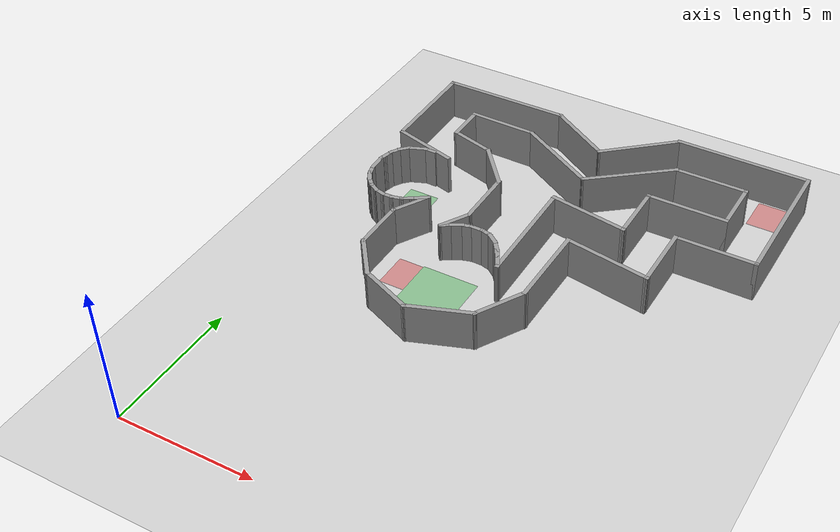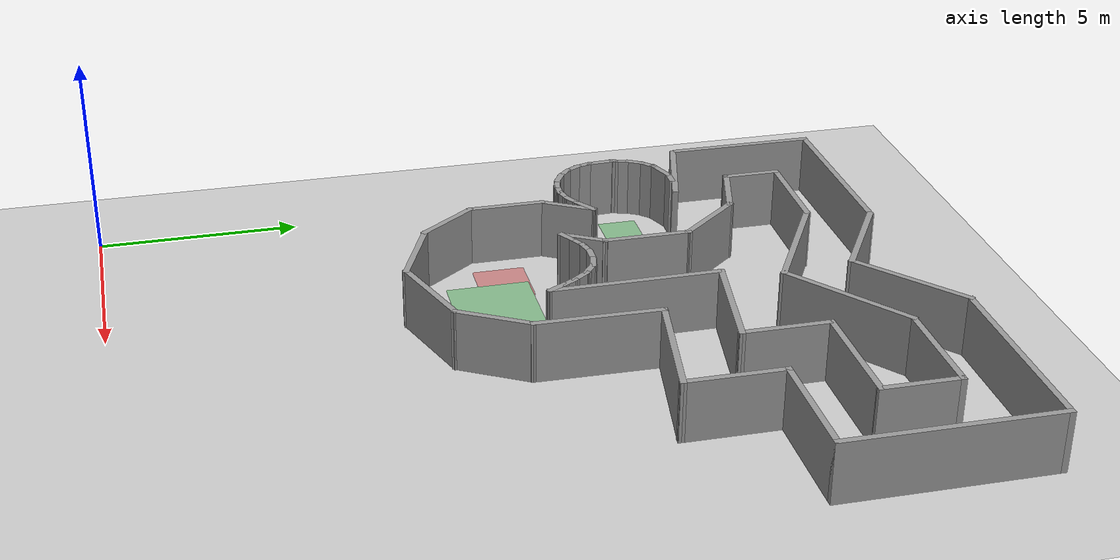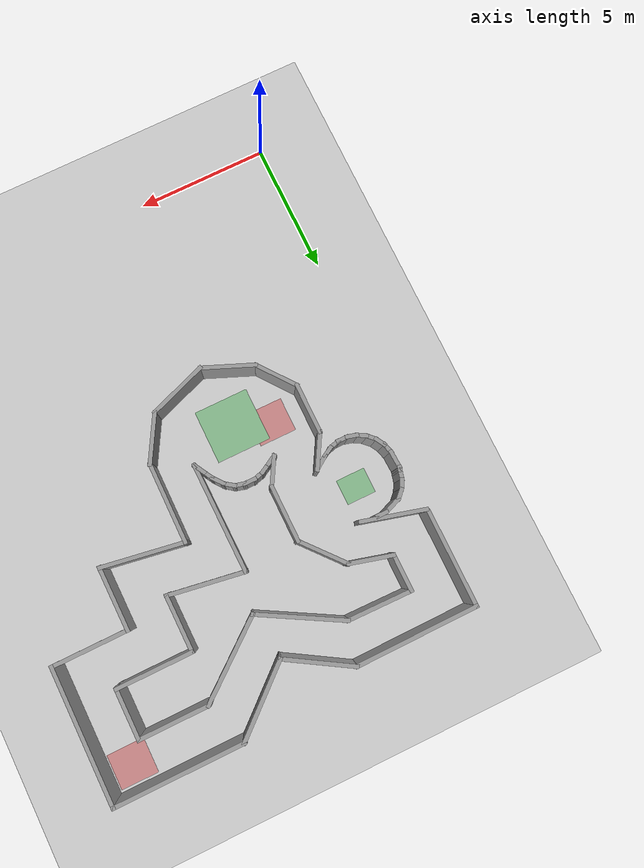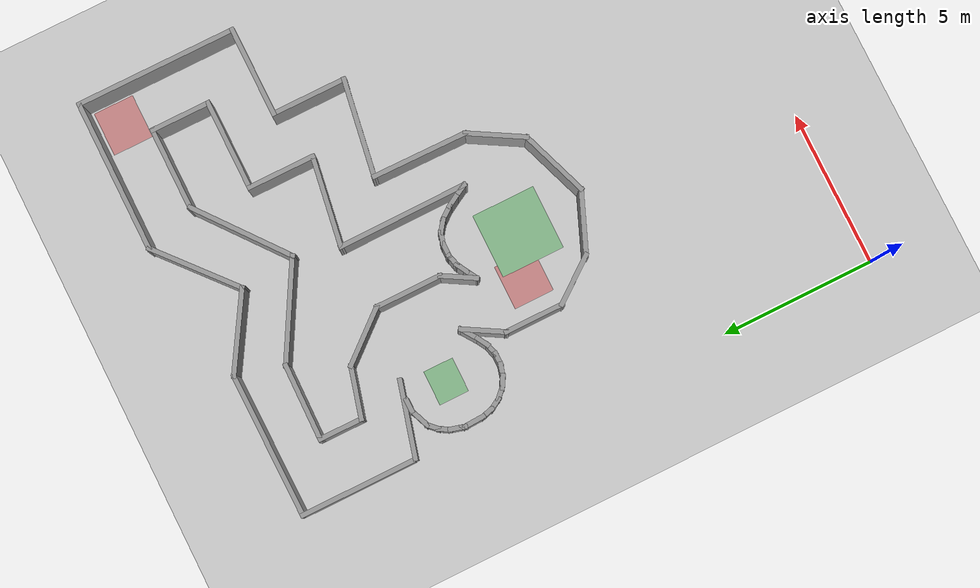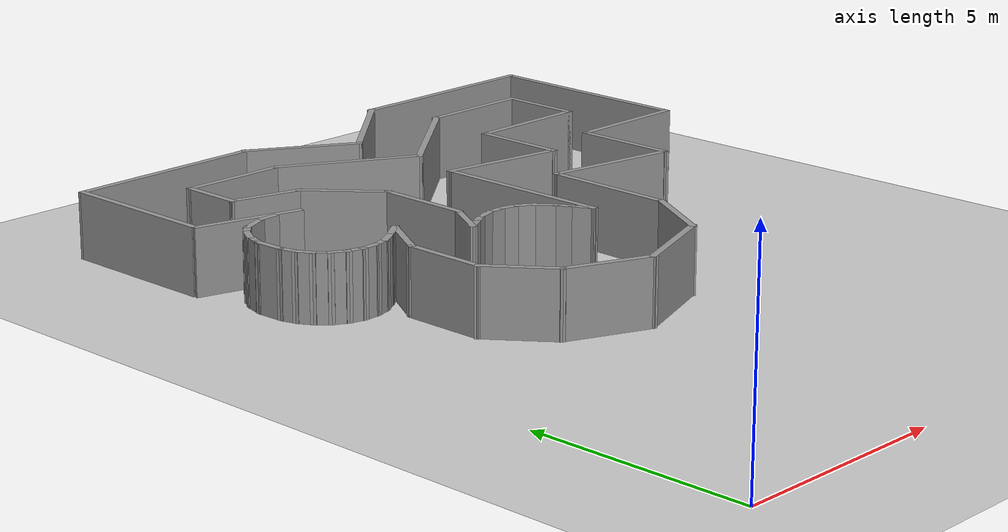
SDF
<sdf version="1.7">
 <world name="default">
  <model name="ground_plane">
   <static>1</static>
   <link name="link">
    <collision name="collision">
     <geometry><plane><normal>0 0 1</normal><size>100 100</size></plane></geometry>
     <surface>
      <contact><collide_bitmask>65535</collide_bitmask></contact>
      <friction><ode><mu>100</mu><mu2>50</mu2></ode></friction>
     </surface>
    </collision>
    <visual name="visual">
     <cast_shadows>0</cast_shadows>
     <geometry><plane><normal>0 0 1</normal><size>100 100</size></plane></geometry>
     <material>
      <script><uri>file://media/materials/scripts/gazebo.material</uri><name>Gazebo/Grey</name></script>
     </material>
    </visual>
   </link>
  </model>
  <model name="map_2">
   <stepLimit>500</stepLimit>
   <pose>7.75806 13.2212 0 0 -0 0</pose>
   <link name="Wall_10">
    <collision name="Wall_10_Collision">
     <geometry><box><size>2.75 0.15 1.5</size></box></geometry>
     <pose>0 0 0.75 0 -0 0</pose>
    </collision>
    <visual name="Wall_10_Visual">
     <pose>0 0 0.75 0 -0 0</pose>
     <geometry><box><size>2.75 0.15 1.5</size></box></geometry>
     <material>
      <script><uri>file://media/materials/scripts/gazebo.material</uri><name>Gazebo/Grey</name></script>
      <ambient>1 1 1 1</ambient>
     </material>
     <meta><layer>0</layer></meta>
    </visual>
    <pose>4.01324 4.53292 0 0 -0 3.14159</pose>
   </link>
   <link name="Wall_100">
    <collision name="Wall_100_Collision">
     <geometry><box><size>0.5 0.15 1.5</size></box></geometry>
     <pose>0 0 0.75 0 -0 0</pose>
    </collision>
    <visual name="Wall_100_Visual">
     <pose>0 0 0.75 0 -0 0</pose>
     <geometry><box><size>0.5 0.15 1.5</size></box></geometry>
     <material>
      <script><uri>file://media/materials/scripts/gazebo.material</uri><name>Gazebo/Grey</name></script>
      <ambient>1 1 1 1</ambient>
     </material>
     <meta><layer>0</layer></meta>
    </visual>
    <pose>-2.19576 -1.78658 0 0 -0 0.262995</pose>
   </link>
   <link name="Wall_101">
    <collision name="Wall_101_Collision">
     <geometry><box><size>0.546939 0.15 1.5</size></box></geometry>
     <pose>0 0 0.75 0 -0 0</pose>
    </collision>
    <visual name="Wall_101_Visual">
     <pose>0 0 0.75 0 -0 0</pose>
     <geometry><box><size>0.546939 0.15 1.5</size></box></geometry>
     <material>
      <script><uri>file://media/materials/scripts/gazebo.material</uri><name>Gazebo/Grey</name></script>
      <ambient>1 1 1 1</ambient>
     </material>
     <meta><layer>0</layer></meta>
    </visual>
    <pose>-1.82826 -1.74408 0 0 -0 -0.015112</pose>
   </link>
   <link name="Wall_102">
    <collision name="Wall_102_Collision">
     <geometry><box><size>0.5 0.15 1.5</size></box></geometry>
     <pose>0 0 0.75 0 -0 0</pose>
    </collision>
    <visual name="Wall_102_Visual">
     <pose>0 0 0.75 0 -0 0</pose>
     <geometry><box><size>0.5 0.15 1.5</size></box></geometry>
     <material>
      <script><uri>file://media/materials/scripts/gazebo.material</uri><name>Gazebo/Grey</name></script>
      <ambient>1 1 1 1</ambient>
     </material>
     <meta><layer>0</layer></meta>
    </visual>
    <pose>-1.46076 -1.79258 0 0 -0 -0.262995</pose>
   </link>
   <link name="Wall_103">
    <collision name="Wall_103_Collision">
     <geometry><box><size>0.544934 0.15 1.5</size></box></geometry>
     <pose>0 0 0.75 0 -0 0</pose>
    </collision>
    <visual name="Wall_103_Visual">
     <pose>0 0 0.75 0 -0 0</pose>
     <geometry><box><size>0.544934 0.15 1.5</size></box></geometry>
     <material>
      <script><uri>file://media/materials/scripts/gazebo.material</uri><name>Gazebo/Grey</name></script>
      <ambient>1 1 1 1</ambient>
     </material>
     <meta><layer>0</layer></meta>
    </visual>
    <pose>-1.13276 -1.95558 0 0 -0 -0.63642</pose>
   </link>
   <link name="Wall_104">
    <collision name="Wall_104_Collision">
     <geometry><box><size>0.590386 0.15 1.5</size></box></geometry>
     <pose>0 0 0.75 0 -0 0</pose>
    </collision>
    <visual name="Wall_104_Visual">
     <pose>0 0 0.75 0 -0 0</pose>
     <geometry><box><size>0.590386 0.15 1.5</size></box></geometry>
     <material>
      <script><uri>file://media/materials/scripts/gazebo.material</uri><name>Gazebo/Grey</name></script>
      <ambient>1 1 1 1</ambient>
     </material>
     <meta><layer>0</layer></meta>
    </visual>
    <pose>-0.837762 -2.24608 0 0 -0 -0.904572</pose>
   </link>
   <link name="Wall_105">
    <collision name="Wall_105_Collision">
     <geometry><box><size>0.5 0.15 1.5</size></box></geometry>
     <pose>0 0 0.75 0 -0 0</pose>
    </collision>
    <visual name="Wall_105_Visual">
     <pose>0 0 0.75 0 -0 0</pose>
     <geometry><box><size>0.5 0.15 1.5</size></box></geometry>
     <material>
      <script><uri>file://media/materials/scripts/gazebo.material</uri><name>Gazebo/Grey</name></script>
      <ambient>1 1 1 1</ambient>
     </material>
     <meta><layer>0</layer></meta>
    </visual>
    <pose>-0.614262 -2.57058 0 0 -0 -1.04704</pose>
   </link>
   <link name="Wall_106">
    <collision name="Wall_106_Collision">
     <geometry><box><size>0.581498 0.15 1.5</size></box></geometry>
     <pose>0 0 0.75 0 -0 0</pose>
    </collision>
    <visual name="Wall_106_Visual">
     <pose>0 0 0.75 0 -0 0</pose>
     <geometry><box><size>0.581498 0.15 1.5</size></box></geometry>
     <material>
      <script><uri>file://media/materials/scripts/gazebo.material</uri><name>Gazebo/Grey</name></script>
      <ambient>1 1 1 1</ambient>
     </material>
     <meta><layer>0</layer></meta>
    </visual>
    <pose>-0.422762 -2.91108 0 0 -0 -1.06775</pose>
   </link>
   <link name="Wall_12">
    <collision name="Wall_12_Collision">
     <geometry><box><size>3.54164 0.15 1.5</size></box></geometry>
     <pose>0 0 0.75 0 -0 0</pose>
    </collision>
    <visual name="Wall_12_Visual">
     <pose>0 0 0.75 0 -0 0</pose>
     <geometry><box><size>3.54164 0.15 1.5</size></box></geometry>
     <material>
      <script><uri>file://media/materials/scripts/gazebo.material</uri><name>Gazebo/Grey</name></script>
      <ambient>1 1 1 1</ambient>
     </material>
     <meta><layer>0</layer></meta>
    </visual>
    <pose>1.38174 3.48292 0 0 -0 0.667741</pose>
   </link>
   <link name="Wall_14">
    <collision name="Wall_14_Collision">
     <geometry><box><size>3.42797 0.15 1.5</size></box></geometry>
     <pose>0 0 0.75 0 -0 0</pose>
    </collision>
    <visual name="Wall_14_Visual">
     <pose>0 0 0.75 0 -0 0</pose>
     <geometry><box><size>3.42797 0.15 1.5</size></box></geometry>
     <material>
      <script><uri>file://media/materials/scripts/gazebo.material</uri><name>Gazebo/Grey</name></script>
      <ambient>1 1 1 1</ambient>
     </material>
     <meta><layer>0</layer></meta>
    </visual>
    <pose>-1.37776 3.23742 0 0 -0 -0.513054</pose>
   </link>
   <link name="Wall_16">
    <collision name="Wall_16_Collision">
     <geometry><box><size>2.56379 0.15 1.5</size></box></geometry>
     <pose>0 0 0.75 0 -0 0</pose>
    </collision>
    <visual name="Wall_16_Visual">
     <pose>0 0 0.75 0 -0 0</pose>
     <geometry><box><size>2.56379 0.15 1.5</size></box></geometry>
     <material>
      <script><uri>file://media/materials/scripts/gazebo.material</uri><name>Gazebo/Grey</name></script>
      <ambient>1 1 1 1</ambient>
     </material>
     <meta><layer>0</layer></meta>
    </visual>
    <pose>-4.01276 4.06192 0 0 -0 -0.016568</pose>
   </link>
   <link name="Wall_18">
    <collision name="Wall_18_Collision">
     <geometry><box><size>1.5 0.15 1.5</size></box></geometry>
     <pose>0 0 0.75 0 -0 0</pose>
    </collision>
    <visual name="Wall_18_Visual">
     <pose>0 0 0.75 0 -0 0</pose>
     <geometry><box><size>1.5 0.15 1.5</size></box></geometry>
     <material>
      <script><uri>file://media/materials/scripts/gazebo.material</uri><name>Gazebo/Grey</name></script>
      <ambient>1 1 1 1</ambient>
     </material>
     <meta><layer>0</layer></meta>
    </visual>
    <pose>-5.21976 3.40692 0 0 -0 -1.5708</pose>
   </link>
   <link name="Wall_19">
    <collision name="Wall_19_Collision">
     <geometry><box><size>1.75 0.15 1.5</size></box></geometry>
     <pose>0 0 0.75 0 -0 0</pose>
    </collision>
    <visual name="Wall_19_Visual">
     <pose>0 0 0.75 0 -0 0</pose>
     <geometry><box><size>1.75 0.15 1.5</size></box></geometry>
     <material>
      <script><uri>file://media/materials/scripts/gazebo.material</uri><name>Gazebo/Grey</name></script>
      <ambient>1 1 1 1</ambient>
     </material>
     <meta><layer>0</layer></meta>
    </visual>
    <pose>-4.44676 2.52492 0 0 -0 -0.261649</pose>
   </link>
   <link name="Wall_2">
    <collision name="Wall_2_Collision">
     <geometry><box><size>4.27213 0.15 1.5</size></box></geometry>
     <pose>0 0 0.75 0 -0 0</pose>
    </collision>
    <visual name="Wall_2_Visual">
     <pose>0 0 0.75 0 -0 0</pose>
     <geometry><box><size>4.27213 0.15 1.5</size></box></geometry>
     <material>
      <script><uri>file://media/materials/scripts/gazebo.material</uri><name>Gazebo/Grey</name></script>
      <ambient>1 1 1 1</ambient>
     </material>
     <meta><layer>0</layer></meta>
    </visual>
    <pose>-0.335262 -1.03908 0 0 -0 1.5788</pose>
   </link>
   <link name="Wall_21">
    <collision name="Wall_21_Collision">
     <geometry><box><size>2.05434 0.15 1.5</size></box></geometry>
     <pose>0 0 0.75 0 -0 0</pose>
    </collision>
    <visual name="Wall_21_Visual">
     <pose>0 0 0.75 0 -0 0</pose>
     <geometry><box><size>2.05434 0.15 1.5</size></box></geometry>
     <material>
      <script><uri>file://media/materials/scripts/gazebo.material</uri><name>Gazebo/Grey</name></script>
      <ambient>1 1 1 1</ambient>
     </material>
     <meta><layer>0</layer></meta>
    </visual>
    <pose>-3.05876 1.59092 0 0 -0 2.27293</pose>
   </link>
   <link name="Wall_42">
    <collision name="Wall_42_Collision">
     <geometry><box><size>2.25 0.15 1.5</size></box></geometry>
     <pose>0 0 0.75 0 -0 0</pose>
    </collision>
    <visual name="Wall_42_Visual">
     <pose>0 0 0.75 0 -0 0</pose>
     <geometry><box><size>2.25 0.15 1.5</size></box></geometry>
     <material>
      <script><uri>file://media/materials/scripts/gazebo.material</uri><name>Gazebo/Grey</name></script>
      <ambient>1 1 1 1</ambient>
     </material>
     <meta><layer>0</layer></meta>
    </visual>
    <pose>-2.44376 -0.186078 0 0 -0 -1.5708</pose>
   </link>
   <link name="Wall_43">
    <collision name="Wall_43_Collision">
     <geometry><box><size>1.25 0.15 1.5</size></box></geometry>
     <pose>0 0 0.75 0 -0 0</pose>
    </collision>
    <visual name="Wall_43_Visual">
     <pose>0 0 0.75 0 -0 0</pose>
     <geometry><box><size>1.25 0.15 1.5</size></box></geometry>
     <material>
      <script><uri>file://media/materials/scripts/gazebo.material</uri><name>Gazebo/Grey</name></script>
      <ambient>1 1 1 1</ambient>
     </material>
     <meta><layer>0</layer></meta>
    </visual>
    <pose>-2.71876 -1.71208 0 0 -0 -2.09468</pose>
   </link>
   <link name="Wall_45">
    <collision name="Wall_45_Collision">
     <geometry><box><size>1.5 0.15 1.5</size></box></geometry>
     <pose>0 0 0.75 0 -0 0</pose>
    </collision>
    <visual name="Wall_45_Visual">
     <pose>0 0 0.75 0 -0 0</pose>
     <geometry><box><size>1.5 0.15 1.5</size></box></geometry>
     <material>
      <script><uri>file://media/materials/scripts/gazebo.material</uri><name>Gazebo/Grey</name></script>
      <ambient>1 1 1 1</ambient>
     </material>
     <meta><layer>0</layer></meta>
    </visual>
    <pose>-4.48526 -1.67358 0 0 -0 -2.09444</pose>
   </link>
   <link name="Wall_46">
    <collision name="Wall_46_Collision">
     <geometry><box><size>2 0.15 1.5</size></box></geometry>
     <pose>0 0 0.75 0 -0 0</pose>
    </collision>
    <visual name="Wall_46_Visual">
     <pose>0 0 0.75 0 -0 0</pose>
     <geometry><box><size>2 0.15 1.5</size></box></geometry>
     <material>
      <script><uri>file://media/materials/scripts/gazebo.material</uri><name>Gazebo/Grey</name></script>
      <ambient>1 1 1 1</ambient>
     </material>
     <meta><layer>0</layer></meta>
    </visual>
    <pose>-4.82276 -3.18308 0 0 -0 -1.5708</pose>
   </link>
   <link name="Wall_48">
    <collision name="Wall_48_Collision">
     <geometry><box><size>1.79931 0.15 1.5</size></box></geometry>
     <pose>0 0 0.75 0 -0 0</pose>
    </collision>
    <visual name="Wall_48_Visual">
     <pose>0 0 0.75 0 -0 0</pose>
     <geometry><box><size>1.79931 0.15 1.5</size></box></geometry>
     <material>
      <script><uri>file://media/materials/scripts/gazebo.material</uri><name>Gazebo/Grey</name></script>
      <ambient>1 1 1 1</ambient>
     </material>
     <meta><layer>0</layer></meta>
    </visual>
    <pose>-4.32126 -4.76258 0 0 -0 2.22461</pose>
   </link>
   <link name="Wall_5">
    <collision name="Wall_5_Collision">
     <geometry><box><size>2.99933 0.15 1.5</size></box></geometry>
     <pose>0 0 0.75 0 -0 0</pose>
    </collision>
    <visual name="Wall_5_Visual">
     <pose>0 0 0.75 0 -0 0</pose>
     <geometry><box><size>2.99933 0.15 1.5</size></box></geometry>
     <material>
      <script><uri>file://media/materials/scripts/gazebo.material</uri><name>Gazebo/Grey</name></script>
      <ambient>1 1 1 1</ambient>
     </material>
     <meta><layer>0</layer></meta>
    </visual>
    <pose>1.05574 0.802422 0 0 -0 2.98689</pose>
   </link>
   <link name="Wall_51">
    <collision name="Wall_51_Collision">
     <geometry><box><size>2.13517 0.15 1.5</size></box></geometry>
     <pose>0 0 0.75 0 -0 0</pose>
    </collision>
    <visual name="Wall_51_Visual">
     <pose>0 0 0.75 0 -0 0</pose>
     <geometry><box><size>2.13517 0.15 1.5</size></box></geometry>
     <material>
      <script><uri>file://media/materials/scripts/gazebo.material</uri><name>Gazebo/Grey</name></script>
      <ambient>1 1 1 1</ambient>
     </material>
     <meta><layer>0</layer></meta>
    </visual>
    <pose>-2.90126 -5.79458 0 0 -0 2.75164</pose>
   </link>
   <link name="Wall_53">
    <collision name="Wall_53_Collision">
     <geometry><box><size>2 0.15 1.5</size></box></geometry>
     <pose>0 0 0.75 0 -0 0</pose>
    </collision>
    <visual name="Wall_53_Visual">
     <pose>0 0 0.75 0 -0 0</pose>
     <geometry><box><size>2 0.15 1.5</size></box></geometry>
     <material>
      <script><uri>file://media/materials/scripts/gazebo.material</uri><name>Gazebo/Grey</name></script>
      <ambient>1 1 1 1</ambient>
     </material>
     <meta><layer>0</layer></meta>
    </visual>
    <pose>0.603738 -4.61208 0 0 -0 -2.09443</pose>
   </link>
   <link name="Wall_54">
    <collision name="Wall_54_Collision">
     <geometry><box><size>2.40606 0.15 1.5</size></box></geometry>
     <pose>0 0 0.75 0 -0 0</pose>
    </collision>
    <visual name="Wall_54_Visual">
     <pose>0 0 0.75 0 -0 0</pose>
     <geometry><box><size>2.40606 0.15 1.5</size></box></geometry>
     <material>
      <script><uri>file://media/materials/scripts/gazebo.material</uri><name>Gazebo/Grey</name></script>
      <ambient>1 1 1 1</ambient>
     </material>
     <meta><layer>0</layer></meta>
    </visual>
    <pose>-0.920762 -5.79258 0 0 -0 -2.79839</pose>
   </link>
   <link name="Wall_56">
    <collision name="Wall_56_Collision">
     <geometry><box><size>3.16414 0.15 1.5</size></box></geometry>
     <pose>0 0 0.75 0 -0 0</pose>
    </collision>
    <visual name="Wall_56_Visual">
     <pose>0 0 0.75 0 -0 0</pose>
     <geometry><box><size>3.16414 0.15 1.5</size></box></geometry>
     <material>
      <script><uri>file://media/materials/scripts/gazebo.material</uri><name>Gazebo/Grey</name></script>
      <ambient>1 1 1 1</ambient>
     </material>
     <meta><layer>0</layer></meta>
    </visual>
    <pose>1.08274 -2.30408 0 0 -0 1.55985</pose>
   </link>
   <link name="Wall_61">
    <collision name="Wall_61_Collision">
     <geometry><box><size>3.23875 0.15 1.5</size></box></geometry>
     <pose>0 0 0.75 0 -0 0</pose>
    </collision>
    <visual name="Wall_61_Visual">
     <pose>0 0 0.75 0 -0 0</pose>
     <geometry><box><size>3.23875 0.15 1.5</size></box></geometry>
     <material>
      <script><uri>file://media/materials/scripts/gazebo.material</uri><name>Gazebo/Grey</name></script>
      <ambient>1 1 1 1</ambient>
     </material>
     <meta><layer>0</layer></meta>
    </visual>
    <pose>2.62424 -1.04158 0 0 -0 2.98262</pose>
   </link>
   <link name="Wall_63">
    <collision name="Wall_63_Collision">
     <geometry><box><size>2.5 0.15 1.5</size></box></geometry>
     <pose>0 0 0.75 0 -0 0</pose>
    </collision>
    <visual name="Wall_63_Visual">
     <pose>0 0 0.75 0 -0 0</pose>
     <geometry><box><size>2.5 0.15 1.5</size></box></geometry>
     <material>
      <script><uri>file://media/materials/scripts/gazebo.material</uri><name>Gazebo/Grey</name></script>
      <ambient>1 1 1 1</ambient>
     </material>
     <meta><layer>0</layer></meta>
    </visual>
    <pose>4.14924 -0.111078 0 0 -0 1.5708</pose>
   </link>
   <link name="Wall_64">
    <collision name="Wall_64_Collision">
     <geometry><box><size>3 0.15 1.5</size></box></geometry>
     <pose>0 0 0.75 0 -0 0</pose>
    </collision>
    <visual name="Wall_64_Visual">
     <pose>0 0 0.75 0 -0 0</pose>
     <geometry><box><size>3 0.15 1.5</size></box></geometry>
     <material>
      <script><uri>file://media/materials/scripts/gazebo.material</uri><name>Gazebo/Grey</name></script>
      <ambient>1 1 1 1</ambient>
     </material>
     <meta><layer>0</layer></meta>
    </visual>
    <pose>5.57424 1.06392 0 0 -0 0</pose>
   </link>
   <link name="Wall_65">
    <collision name="Wall_65_Collision">
     <geometry><box><size>5.25 0.15 1.5</size></box></geometry>
     <pose>0 0 0.75 0 -0 0</pose>
    </collision>
    <visual name="Wall_65_Visual">
     <pose>0 0 0.75 0 -0 0</pose>
     <geometry><box><size>5.25 0.15 1.5</size></box></geometry>
     <material>
      <script><uri>file://media/materials/scripts/gazebo.material</uri><name>Gazebo/Grey</name></script>
      <ambient>1 1 1 1</ambient>
     </material>
     <meta><layer>0</layer></meta>
    </visual>
    <pose>6.99924 3.61392 0 0 -0 1.5708</pose>
   </link>
   <link name="Wall_66">
    <collision name="Wall_66_Collision">
     <geometry><box><size>5 0.15 1.5</size></box></geometry>
     <pose>0 0 0.75 0 -0 0</pose>
    </collision>
    <visual name="Wall_66_Visual">
     <pose>0 0 0.75 0 -0 0</pose>
     <geometry><box><size>5 0.15 1.5</size></box></geometry>
     <material>
      <script><uri>file://media/materials/scripts/gazebo.material</uri><name>Gazebo/Grey</name></script>
      <ambient>1 1 1 1</ambient>
     </material>
     <meta><layer>0</layer></meta>
    </visual>
    <pose>4.57424 6.16392 0 0 -0 3.14159</pose>
   </link>
   <link name="Wall_68">
    <collision name="Wall_68_Collision">
     <geometry><box><size>3.17756 0.15 1.5</size></box></geometry>
     <pose>0 0 0.75 0 -0 0</pose>
    </collision>
    <visual name="Wall_68_Visual">
     <pose>0 0 0.75 0 -0 0</pose>
     <geometry><box><size>3.17756 0.15 1.5</size></box></geometry>
     <material>
      <script><uri>file://media/materials/scripts/gazebo.material</uri><name>Gazebo/Grey</name></script>
      <ambient>1 1 1 1</ambient>
     </material>
     <meta><layer>0</layer></meta>
    </visual>
    <pose>1.00124 5.17742 0 0 -0 0.70988</pose>
   </link>
   <link name="Wall_7">
    <collision name="Wall_7_Collision">
     <geometry><box><size>2.25 0.15 1.5</size></box></geometry>
     <pose>0 0 0.75 0 -0 0</pose>
    </collision>
    <visual name="Wall_7_Visual">
     <pose>0 0 0.75 0 -0 0</pose>
     <geometry><box><size>2.25 0.15 1.5</size></box></geometry>
     <material>
      <script><uri>file://media/materials/scripts/gazebo.material</uri><name>Gazebo/Grey</name></script>
      <ambient>1 1 1 1</ambient>
     </material>
     <meta><layer>0</layer></meta>
    </visual>
    <pose>2.46324 1.63292 0 0 -0 1.5708</pose>
   </link>
   <link name="Wall_70">
    <collision name="Wall_70_Collision">
     <geometry><box><size>2.7834 0.15 1.5</size></box></geometry>
     <pose>0 0 0.75 0 -0 0</pose>
    </collision>
    <visual name="Wall_70_Visual">
     <pose>0 0 0.75 0 -0 0</pose>
     <geometry><box><size>2.7834 0.15 1.5</size></box></geometry>
     <material>
      <script><uri>file://media/materials/scripts/gazebo.material</uri><name>Gazebo/Grey</name></script>
      <ambient>1 1 1 1</ambient>
     </material>
     <meta><layer>0</layer></meta>
    </visual>
    <pose>-1.27276 4.87342 0 0 -0 2.59668</pose>
   </link>
   <link name="Wall_71">
    <collision name="Wall_71_Collision">
     <geometry><box><size>4.75 0.15 1.5</size></box></geometry>
     <pose>0 0 0.75 0 -0 0</pose>
    </collision>
    <visual name="Wall_71_Visual">
     <pose>0 0 0.75 0 -0 0</pose>
     <geometry><box><size>4.75 0.15 1.5</size></box></geometry>
     <material>
      <script><uri>file://media/materials/scripts/gazebo.material</uri><name>Gazebo/Grey</name></script>
      <ambient>1 1 1 1</ambient>
     </material>
     <meta><layer>0</layer></meta>
    </visual>
    <pose>-4.69876 5.53942 0 0 -0 -3.13442</pose>
   </link>
   <link name="Wall_74">
    <collision name="Wall_74_Collision">
     <geometry><box><size>3.75 0.15 1.5</size></box></geometry>
     <pose>0 0 0.75 0 -0 0</pose>
    </collision>
    <visual name="Wall_74_Visual">
     <pose>0 0 0.75 0 -0 0</pose>
     <geometry><box><size>3.75 0.15 1.5</size></box></geometry>
     <material>
      <script><uri>file://media/materials/scripts/gazebo.material</uri><name>Gazebo/Grey</name></script>
      <ambient>1 1 1 1</ambient>
     </material>
     <meta><layer>0</layer></meta>
    </visual>
    <pose>-6.99876 3.72292 0 0 -0 -1.5708</pose>
   </link>
   <link name="Wall_78">
    <collision name="Wall_78_Collision">
     <geometry><box><size>2.5 0.15 1.5</size></box></geometry>
     <pose>0 0 0.75 0 -0 0</pose>
    </collision>
    <visual name="Wall_78_Visual">
     <pose>0 0 0.75 0 -0 0</pose>
     <geometry><box><size>2.5 0.15 1.5</size></box></geometry>
     <material>
      <script><uri>file://media/materials/scripts/gazebo.material</uri><name>Gazebo/Grey</name></script>
      <ambient>1 1 1 1</ambient>
     </material>
     <meta><layer>0</layer></meta>
    </visual>
    <pose>-5.83976 1.51042 0 0 -0 2.87948</pose>
   </link>
   <link name="Wall_8">
    <collision name="Wall_8_Collision">
     <geometry><box><size>3 0.15 1.5</size></box></geometry>
     <pose>0 0 0.75 0 -0 0</pose>
    </collision>
    <visual name="Wall_8_Visual">
     <pose>0 0 0.75 0 -0 0</pose>
     <geometry><box><size>3 0.15 1.5</size></box></geometry>
     <material>
      <script><uri>file://media/materials/scripts/gazebo.material</uri><name>Gazebo/Grey</name></script>
      <ambient>1 1 1 1</ambient>
     </material>
     <meta><layer>0</layer></meta>
    </visual>
    <pose>3.88824 2.68292 0 0 -0 0</pose>
   </link>
   <link name="Wall_81">
    <collision name="Wall_81_Collision">
     <geometry><box><size>0.5 0.15 1.5</size></box></geometry>
     <pose>0 0 0.75 0 -0 0</pose>
    </collision>
    <visual name="Wall_81_Visual">
     <pose>0 0 0.75 0 -0 0</pose>
     <geometry><box><size>0.5 0.15 1.5</size></box></geometry>
     <material>
      <script><uri>file://media/materials/scripts/gazebo.material</uri><name>Gazebo/Grey</name></script>
      <ambient>1 1 1 1</ambient>
     </material>
     <meta><layer>0</layer></meta>
    </visual>
    <pose>-5.49576 1.29292 0 0 -0 3.14159</pose>
   </link>
   <link name="Wall_82">
    <collision name="Wall_82_Collision">
     <geometry><box><size>0.768595 0.15 1.5</size></box></geometry>
     <pose>0 0 0.75 0 -0 0</pose>
    </collision>
    <visual name="Wall_82_Visual">
     <pose>0 0 0.75 0 -0 0</pose>
     <geometry><box><size>0.768595 0.15 1.5</size></box></geometry>
     <material>
      <script><uri>file://media/materials/scripts/gazebo.material</uri><name>Gazebo/Grey</name></script>
      <ambient>1 1 1 1</ambient>
     </material>
     <meta><layer>0</layer></meta>
    </visual>
    <pose>-5.95826 1.17942 0 0 -0 -2.76559</pose>
   </link>
   <link name="Wall_83">
    <collision name="Wall_83_Collision">
     <geometry><box><size>0.5 0.15 1.5</size></box></geometry>
     <pose>0 0 0.75 0 -0 0</pose>
    </collision>
    <visual name="Wall_83_Visual">
     <pose>0 0 0.75 0 -0 0</pose>
     <geometry><box><size>0.5 0.15 1.5</size></box></geometry>
     <material>
      <script><uri>file://media/materials/scripts/gazebo.material</uri><name>Gazebo/Grey</name></script>
      <ambient>1 1 1 1</ambient>
     </material>
     <meta><layer>0</layer></meta>
    </visual>
    <pose>-6.36976 0.941922 0 0 -0 -2.35619</pose>
   </link>
   <link name="Wall_84">
    <collision name="Wall_84_Collision">
     <geometry><box><size>0.5 0.15 1.5</size></box></geometry>
     <pose>0 0 0.75 0 -0 0</pose>
    </collision>
    <visual name="Wall_84_Visual">
     <pose>0 0 0.75 0 -0 0</pose>
     <geometry><box><size>0.5 0.15 1.5</size></box></geometry>
     <material>
      <script><uri>file://media/materials/scripts/gazebo.material</uri><name>Gazebo/Grey</name></script>
      <ambient>1 1 1 1</ambient>
     </material>
     <meta><layer>0</layer></meta>
    </visual>
    <pose>-6.58126 0.666422 0 0 -0 -2.09455</pose>
   </link>
   <link name="Wall_85">
    <collision name="Wall_85_Collision">
     <geometry><box><size>0.5 0.15 1.5</size></box></geometry>
     <pose>0 0 0.75 0 -0 0</pose>
    </collision>
    <visual name="Wall_85_Visual">
     <pose>0 0 0.75 0 -0 0</pose>
     <geometry><box><size>0.5 0.15 1.5</size></box></geometry>
     <material>
      <script><uri>file://media/materials/scripts/gazebo.material</uri><name>Gazebo/Grey</name></script>
      <ambient>1 1 1 1</ambient>
     </material>
     <meta><layer>0</layer></meta>
    </visual>
    <pose>-6.71376 0.345922 0 0 -0 -1.83103</pose>
   </link>
   <link name="Wall_86">
    <collision name="Wall_86_Collision">
     <geometry><box><size>0.25 0.15 1.5</size></box></geometry>
     <pose>0 0 0.75 0 -0 0</pose>
    </collision>
    <visual name="Wall_86_Visual">
     <pose>0 0 0.75 0 -0 0</pose>
     <geometry><box><size>0.25 0.15 1.5</size></box></geometry>
     <material>
      <script><uri>file://media/materials/scripts/gazebo.material</uri><name>Gazebo/Grey</name></script>
      <ambient>1 1 1 1</ambient>
     </material>
     <meta><layer>0</layer></meta>
    </visual>
    <pose>-6.77176 0.128422 0 0 -0 -1.83268</pose>
   </link>
   <link name="Wall_87">
    <collision name="Wall_87_Collision">
     <geometry><box><size>0.753962 0.15 1.5</size></box></geometry>
     <pose>0 0 0.75 0 -0 0</pose>
    </collision>
    <visual name="Wall_87_Visual">
     <pose>0 0 0.75 0 -0 0</pose>
     <geometry><box><size>0.753962 0.15 1.5</size></box></geometry>
     <material>
      <script><uri>file://media/materials/scripts/gazebo.material</uri><name>Gazebo/Grey</name></script>
      <ambient>1 1 1 1</ambient>
     </material>
     <meta><layer>0</layer></meta>
    </visual>
    <pose>-6.77176 -0.221578 0 0 -0 -1.52771</pose>
   </link>
   <link name="Wall_88">
    <collision name="Wall_88_Collision">
     <geometry><box><size>0.5 0.15 1.5</size></box></geometry>
     <pose>0 0 0.75 0 -0 0</pose>
    </collision>
    <visual name="Wall_88_Visual">
     <pose>0 0 0.75 0 -0 0</pose>
     <geometry><box><size>0.5 0.15 1.5</size></box></geometry>
     <material>
      <script><uri>file://media/materials/scripts/gazebo.material</uri><name>Gazebo/Grey</name></script>
      <ambient>1 1 1 1</ambient>
     </material>
     <meta><layer>0</layer></meta>
    </visual>
    <pose>-6.71376 -0.692078 0 0 -0 -1.31056</pose>
   </link>
   <link name="Wall_89">
    <collision name="Wall_89_Collision">
     <geometry><box><size>0.5 0.15 1.5</size></box></geometry>
     <pose>0 0 0.75 0 -0 0</pose>
    </collision>
    <visual name="Wall_89_Visual">
     <pose>0 0 0.75 0 -0 0</pose>
     <geometry><box><size>0.5 0.15 1.5</size></box></geometry>
     <material>
      <script><uri>file://media/materials/scripts/gazebo.material</uri><name>Gazebo/Grey</name></script>
      <ambient>1 1 1 1</ambient>
     </material>
     <meta><layer>0</layer></meta>
    </visual>
    <pose>-6.58126 -1.01258 0 0 -0 -1.04704</pose>
   </link>
   <link name="Wall_9">
    <collision name="Wall_9_Collision">
     <geometry><box><size>2 0.15 1.5</size></box></geometry>
     <pose>0 0 0.75 0 -0 0</pose>
    </collision>
    <visual name="Wall_9_Visual">
     <pose>0 0 0.75 0 -0 0</pose>
     <geometry><box><size>2 0.15 1.5</size></box></geometry>
     <material>
      <script><uri>file://media/materials/scripts/gazebo.material</uri><name>Gazebo/Grey</name></script>
      <ambient>1 1 1 1</ambient>
     </material>
     <meta><layer>0</layer></meta>
    </visual>
    <pose>5.31324 3.60792 0 0 -0 1.5708</pose>
   </link>
   <link name="Wall_90">
    <collision name="Wall_90_Collision">
     <geometry><box><size>0.5 0.15 1.5</size></box></geometry>
     <pose>0 0 0.75 0 -0 0</pose>
    </collision>
    <visual name="Wall_90_Visual">
     <pose>0 0 0.75 0 -0 0</pose>
     <geometry><box><size>0.5 0.15 1.5</size></box></geometry>
     <material>
      <script><uri>file://media/materials/scripts/gazebo.material</uri><name>Gazebo/Grey</name></script>
      <ambient>1 1 1 1</ambient>
     </material>
     <meta><layer>0</layer></meta>
    </visual>
    <pose>-6.36976 -1.28808 0 0 -0 -0.785398</pose>
   </link>
   <link name="Wall_91">
    <collision name="Wall_91_Collision">
     <geometry><box><size>0.5 0.15 1.5</size></box></geometry>
     <pose>0 0 0.75 0 -0 0</pose>
    </collision>
    <visual name="Wall_91_Visual">
     <pose>0 0 0.75 0 -0 0</pose>
     <geometry><box><size>0.5 0.15 1.5</size></box></geometry>
     <material>
      <script><uri>file://media/materials/scripts/gazebo.material</uri><name>Gazebo/Grey</name></script>
      <ambient>1 1 1 1</ambient>
     </material>
     <meta><layer>0</layer></meta>
    </visual>
    <pose>-6.09426 -1.49958 0 0 -0 -0.523754</pose>
   </link>
   <link name="Wall_92">
    <collision name="Wall_92_Collision">
     <geometry><box><size>0.5 0.15 1.5</size></box></geometry>
     <pose>0 0 0.75 0 -0 0</pose>
    </collision>
    <visual name="Wall_92_Visual">
     <pose>0 0 0.75 0 -0 0</pose>
     <geometry><box><size>0.5 0.15 1.5</size></box></geometry>
     <material>
      <script><uri>file://media/materials/scripts/gazebo.material</uri><name>Gazebo/Grey</name></script>
      <ambient>1 1 1 1</ambient>
     </material>
     <meta><layer>0</layer></meta>
    </visual>
    <pose>-5.77376 -1.63208 0 0 -0 -0.260234</pose>
   </link>
   <link name="Wall_93">
    <collision name="Wall_93_Collision">
     <geometry><box><size>0.5 0.15 1.5</size></box></geometry>
     <pose>0 0 0.75 0 -0 0</pose>
    </collision>
    <visual name="Wall_93_Visual">
     <pose>0 0 0.75 0 -0 0</pose>
     <geometry><box><size>0.5 0.15 1.5</size></box></geometry>
     <material>
      <script><uri>file://media/materials/scripts/gazebo.material</uri><name>Gazebo/Grey</name></script>
      <ambient>1 1 1 1</ambient>
     </material>
     <meta><layer>0</layer></meta>
    </visual>
    <pose>-5.42976 -1.67708 0 0 -0 0</pose>
   </link>
   <link name="Wall_94">
    <collision name="Wall_94_Collision">
     <geometry><box><size>0.5 0.15 1.5</size></box></geometry>
     <pose>0 0 0.75 0 -0 0</pose>
    </collision>
    <visual name="Wall_94_Visual">
     <pose>0 0 0.75 0 -0 0</pose>
     <geometry><box><size>0.5 0.15 1.5</size></box></geometry>
     <material>
      <script><uri>file://media/materials/scripts/gazebo.material</uri><name>Gazebo/Grey</name></script>
      <ambient>1 1 1 1</ambient>
     </material>
     <meta><layer>0</layer></meta>
    </visual>
    <pose>-5.08576 -1.63208 0 0 -0 0.260234</pose>
   </link>
   <link name="Wall_95">
    <collision name="Wall_95_Collision">
     <geometry><box><size>0.5 0.15 1.5</size></box></geometry>
     <pose>0 0 0.75 0 -0 0</pose>
    </collision>
    <visual name="Wall_95_Visual">
     <pose>0 0 0.75 0 -0 0</pose>
     <geometry><box><size>0.5 0.15 1.5</size></box></geometry>
     <material>
      <script><uri>file://media/materials/scripts/gazebo.material</uri><name>Gazebo/Grey</name></script>
      <ambient>1 1 1 1</ambient>
     </material>
     <meta><layer>0</layer></meta>
    </visual>
    <pose>-4.76526 -1.49958 0 0 -0 0.523754</pose>
   </link>
   <link name="Wall_96">
    <collision name="Wall_96_Collision">
     <geometry><box><size>0.716759 0.15 1.5</size></box></geometry>
     <pose>0 0 0.75 0 -0 0</pose>
    </collision>
    <visual name="Wall_96_Visual">
     <pose>0 0 0.75 0 -0 0</pose>
     <geometry><box><size>0.716759 0.15 1.5</size></box></geometry>
     <material>
      <script><uri>file://media/materials/scripts/gazebo.material</uri><name>Gazebo/Grey</name></script>
      <ambient>1 1 1 1</ambient>
     </material>
     <meta><layer>0</layer></meta>
    </visual>
    <pose>-4.38076 -1.25058 0 0 -0 0.606102</pose>
   </link>
   <link name="Wall_98">
    <collision name="Wall_98_Collision">
     <geometry><box><size>0.5 0.15 1.5</size></box></geometry>
     <pose>0 0 0.75 0 -0 0</pose>
    </collision>
    <visual name="Wall_98_Visual">
     <pose>0 0 0.75 0 -0 0</pose>
     <geometry><box><size>0.5 0.15 1.5</size></box></geometry>
     <material>
      <script><uri>file://media/materials/scripts/gazebo.material</uri><name>Gazebo/Grey</name></script>
      <ambient>1 1 1 1</ambient>
     </material>
     <meta><layer>0</layer></meta>
    </visual>
    <pose>-2.84226 -2.10058 0 0 -0 0.523754</pose>
   </link>
   <link name="Wall_99">
    <collision name="Wall_99_Collision">
     <geometry><box><size>0.52309 0.15 1.5</size></box></geometry>
     <pose>0 0 0.75 0 -0 0</pose>
    </collision>
    <visual name="Wall_99_Visual">
     <pose>0 0 0.75 0 -0 0</pose>
     <geometry><box><size>0.52309 0.15 1.5</size></box></geometry>
     <material>
      <script><uri>file://media/materials/scripts/gazebo.material</uri><name>Gazebo/Grey</name></script>
      <ambient>1 1 1 1</ambient>
     </material>
     <meta><layer>0</layer></meta>
    </visual>
    <pose>-2.52776 -1.92258 0 0 -0 0.506838</pose>
   </link>
   <static>1</static>
  </model>
  <model name="map_2_target">
   <link name="target_1">
    <inertial>
     <mass>0.0521526</mass>
     <inertia>
      <ixx>0.00731153</ixx>
      <ixy>0</ixy>
      <ixz>0</ixz>
      <iyy>0.00880173</iyy>
      <iyz>0</iyz>
      <izz>0.0161063</izz>
     </inertia>
    </inertial>
    <pose>4.83979 4.44028 -0 0 -0 0</pose>
    <visual name="visual">
     <geometry><box><size>1.42282 1.29674 0.028251</size></box></geometry>
     <material>
      <lighting>1</lighting>
      <script><uri>file://media/materials/scripts/gazebo.material</uri><name>Gazebo/Red</name></script>
      <shader type="pixel"><normal_map>__default__</normal_map></shader>
      <ambient>1 0 0 1</ambient>
      <diffuse>1 0 0 1</diffuse>
      <specular>0.1 0.1 0.1 1</specular>
      <emissive>0 0 0 1</emissive>
     </material>
     <transparency>0.6</transparency>
    </visual>
   </link>
   <link name="target_2">
    <inertial>
     <mass>0.0521526</mass>
     <inertia>
      <ixx>0.00731153</ixx>
      <ixy>0</ixy>
      <ixz>0</ixz>
      <iyy>0.00880173</iyy>
      <iyz>0</iyz>
      <izz>0.0161063</izz>
     </inertia>
    </inertial>
    <pose>-4.83979 -4.44028 -0 0 -0 0</pose>
    <visual name="visual">
     <geometry><box><size>1.42282 1.29674 0.028251</size></box></geometry>
     <material>
      <lighting>1</lighting>
      <script><uri>file://media/materials/scripts/gazebo.material</uri><name>Gazebo/Red</name></script>
      <shader type="pixel"><normal_map>__default__</normal_map></shader>
      <ambient>1 0 0 1</ambient>
      <diffuse>1 0 0 1</diffuse>
      <specular>0.1 0.1 0.1 1</specular>
      <emissive>0 0 0 1</emissive>
     </material>
     <transparency>0.6</transparency>
    </visual>
   </link>
   <static>1</static>
   <pose>9.07791 14.1334 0 0 -0 0</pose>
  </model>
  <model name="map_2_spawn">
   <link name="spawn_1a">
    <inertial>
     <mass>0.131934</mass>
     <inertia>
      <ixx>0.0461891</ixx>
      <ixy>0</ixy>
      <ixz>0</ixz>
      <iyy>0.0476972</iyy>
      <iyz>0</iyz>
      <izz>0.0938653</izz>
     </inertia>
    </inertial>
    <pose>1.49824 -2.02084 0.147808 0 -0 0</pose>
    <gravity>0</gravity>
    <visual name="visual">
     <geometry><box><size>2.08263 2.04943 0.030868</size></box></geometry>
     <material>
      <lighting>1</lighting>
      <script><uri>file://media/materials/scripts/gazebo.material</uri><name>Gazebo/Green</name></script>
      <shader type="pixel"><normal_map>__default__</normal_map></shader>
      <ambient>0 1 0 1</ambient>
      <diffuse>0.7 0.7 0.7 1</diffuse>
      <specular>0.01 0.01 0.01 1</specular>
      <emissive>0 0 0 1</emissive>
     </material>
     <transparency>0.6</transparency>
    </visual>
   </link>
   <link name="spawn_1b">
    <inertial>
     <mass>0.131934</mass>
     <inertia>
      <ixx>0.0461891</ixx>
      <ixy>0</ixy>
      <ixz>0</ixz>
      <iyy>0.0476972</iyy>
      <iyz>0</iyz>
      <izz>0.0938653</izz>
     </inertia>
    </inertial>
    <pose>-1.60939 1.96195 0.147808 0 -0 0</pose>
    <gravity>0</gravity>
    <visual name="visual">
     <geometry><box><size>1.11598 0.965402 0.030868</size></box></geometry>
     <material>
      <lighting>1</lighting>
      <script><uri>file://media/materials/scripts/gazebo.material</uri><name>Gazebo/Green</name></script>
      <shader type="pixel"><normal_map>__default__</normal_map></shader>
      <ambient>0 1 0 1</ambient>
      <diffuse>0.7 0.7 0.7 1</diffuse>
      <specular>0.01 0.01 0.01 1</specular>
      <emissive>0 0 0 1</emissive>
     </material>
     <transparency>0.6</transparency>
    </visual>
   </link>
   <link name="spawn_2">
    <inertial>
     <mass>0.0127635</mass>
     <inertia>
      <ixx>0.00038134</ixx>
      <ixy>0</ixy>
      <ixz>0</ixz>
      <iyy>0.00051061</iyy>
      <iyz>0</iyz>
      <izz>0.00088993</izz>
     </inertia>
    </inertial>
    <pose>9.73816 7.30376 -0.005337 0 -0 0</pose>
    <gravity>0</gravity>
    <visual name="visual">
     <geometry><box><size>0.69218 0.59798 0.030825</size></box></geometry>
     <material>
      <lighting>1</lighting>
      <script><uri>file://media/materials/scripts/gazebo.material</uri><name>Gazebo/Green</name></script>
      <shader type="pixel"><normal_map>__default__</normal_map></shader>
      <ambient>0 1 0 1</ambient>
      <diffuse>0 1 0 1</diffuse>
      <specular>0.1 0.1 0.1 1</specular>
      <emissive>0 0 0 1</emissive>
     </material>
     <transparency>0.6</transparency>
    </visual>
   </link>
   <static>1</static>
   <pose>4.0886 11.2419 0 0 -0 0</pose>
  </model>
 </world>
</sdf>
